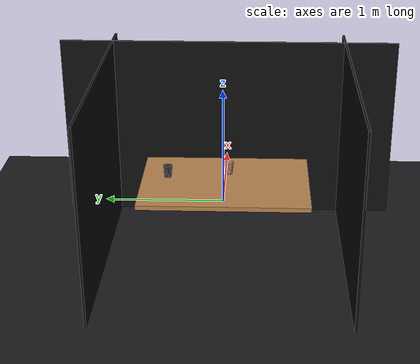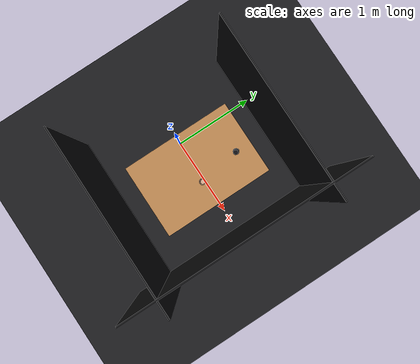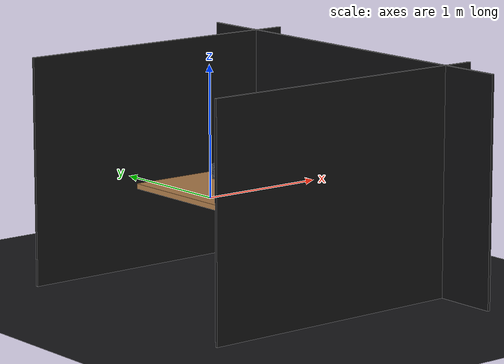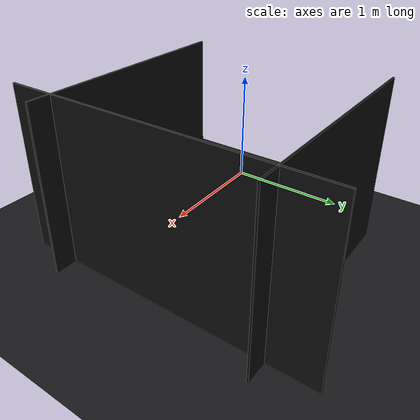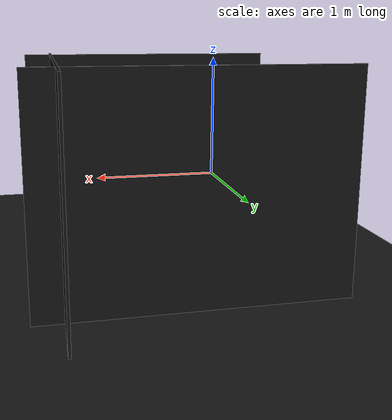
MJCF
<!-- GENERATED by scripts/build_yam_assets.py from teleop_sim/envs/yam_assets.py.
     Do not edit by hand: change the generator and re-run it. -->
<mujoco model="gem13_cell">
  <compiler angle="radian"/>
  <include file="cups.xml"/>
  <option timestep="0.0016666666666666668" integrator="implicitfast"
          cone="elliptic" impratio="10"/>
  <visual>
    <global offwidth="1280" offheight="960"/>
    <quality shadowsize="4096"/>
    <headlight ambient="0.42 0.40 0.38" diffuse="0.22 0.21 0.20" specular="0 0 0"/>
  </visual>
  <asset>
    <texture name="skybox" type="skybox" builtin="flat" rgb1="0.04 0.04 0.045"
             rgb2="0.04 0.04 0.045" width="64" height="384"/>
    <texture name="wood_tex" type="2d" file="wood.png"/>
    <material name="wood" texture="wood_tex" texuniform="true" texrepeat="2 2"
              reflectance="0" specular="0.08" shininess="0.15"/>
    <material name="curtain" rgba="0.055 0.055 0.06 1" specular="0" shininess="0"/>
    <material name="floor" rgba="0.10 0.10 0.11 1" specular="0"/>
  </asset>
  <worldbody>
    <light name="key" pos="0.45 0.1 1.6" dir="0 0 -1" diffuse="0.42 0.39 0.35"
           specular="0.03 0.03 0.03" castshadow="true"/>
    <light name="fill" pos="-0.2 -0.6 1.1" dir="0.3 0.5 -0.8" diffuse="0.22 0.20 0.18"
           specular="0 0 0" castshadow="false"/>
    <!-- Top at z = 0 (the arm base's plane); ends at the measured far edge. -->
    <geom name="tabletop" type="box" size="0.505 0.750 0.02" pos="0.385 0 -0.02"
          material="wood" friction="1.0 0.01 0.001"/>
    <geom name="floor" type="plane" size="3 3 0.05" pos="0 0 -0.76" material="floor" contype="0" conaffinity="0"/>
    <geom name="curtain_back" type="box" size="0.01 1.6 0.9" pos="1.340 0 0.1"
          material="curtain" contype="0" conaffinity="0"/>
    <geom name="curtain_left" type="box" size="1.2 0.01 0.9"
          pos="0.385 1.100 0.1" material="curtain" contype="0" conaffinity="0"/>
    <geom name="curtain_right" type="box" size="1.2 0.01 0.9"
          pos="0.385 -1.100 0.1" material="curtain" contype="0" conaffinity="0"/>
    <camera name="top" pos="0.22 0 0.72" xyaxes="0.000000 -1.000000 0.000000 0.965755 0.000000 0.259457" fovy="55"/>
  </worldbody>
</mujoco>

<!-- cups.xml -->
<!-- GENERATED by scripts/build_yam_assets.py from teleop_sim/envs/yam_assets.py.
     Do not edit by hand: change the generator and re-run it. -->
<mujoco model="gem13_cups">
  <worldbody>
    <body name="cup" pos="0.552 -0.03 0">
      <freejoint name="cup_free"/>
      <geom name="cup_base" type="cylinder" size="0.029 0.001" pos="0 0 0.001" density="900" rgba="0.93 0.8 0.76 0.55" friction="1 0.02 0.001" condim="4" solimp="0.95 0.99 0.001" solref="0.004 1"/>
      <geom name="cup_wall00" type="box" size="0.00075 0.005865 0.054390" pos="0.034750 0.000000 0.056" quat="0.998207 -0.000000 0.059861 0.000000" density="900" rgba="0.93 0.8 0.76 0.55" friction="1 0.02 0.001" condim="4" solimp="0.95 0.99 0.001" solref="0.004 1"/>
      <geom name="cup_wall01" type="box" size="0.00075 0.005865 0.054390" pos="0.033566 0.008994 0.056" quat="0.989667 -0.007813 0.059349 0.130292" density="900" rgba="0.93 0.8 0.76 0.55" friction="1 0.02 0.001" condim="4" solimp="0.95 0.99 0.001" solref="0.004 1"/>
      <geom name="cup_wall02" type="box" size="0.00075 0.005865 0.054390" pos="0.030094 0.017375 0.056" quat="0.964194 -0.015493 0.057821 0.258355" density="900" rgba="0.93 0.8 0.76 0.55" friction="1 0.02 0.001" condim="4" solimp="0.95 0.99 0.001" solref="0.004 1"/>
      <geom name="cup_wall03" type="box" size="0.00075 0.005865 0.054390" pos="0.024572 0.024572 0.056" quat="0.922223 -0.022908 0.055305 0.381997" density="900" rgba="0.93 0.8 0.76 0.55" friction="1 0.02 0.001" condim="4" solimp="0.95 0.99 0.001" solref="0.004 1"/>
      <geom name="cup_wall04" type="box" size="0.00075 0.005865 0.054390" pos="0.017375 0.030094 0.056" quat="0.864472 -0.029931 0.051841 0.499103" density="900" rgba="0.93 0.8 0.76 0.55" friction="1 0.02 0.001" condim="4" solimp="0.95 0.99 0.001" solref="0.004 1"/>
      <geom name="cup_wall05" type="box" size="0.00075 0.005865 0.054390" pos="0.008994 0.033566 0.056" quat="0.791931 -0.036441 0.047491 0.607670" density="900" rgba="0.93 0.8 0.76 0.55" friction="1 0.02 0.001" condim="4" solimp="0.95 0.99 0.001" solref="0.004 1"/>
      <geom name="cup_wall06" type="box" size="0.00075 0.005865 0.054390" pos="0.000000 0.034750 0.056" quat="0.705839 -0.042328 0.042328 0.705839" density="900" rgba="0.93 0.8 0.76 0.55" friction="1 0.02 0.001" condim="4" solimp="0.95 0.99 0.001" solref="0.004 1"/>
      <geom name="cup_wall07" type="box" size="0.00075 0.005865 0.054390" pos="-0.008994 0.033566 0.056" quat="0.607670 -0.047491 0.036441 0.791931" density="900" rgba="0.93 0.8 0.76 0.55" friction="1 0.02 0.001" condim="4" solimp="0.95 0.99 0.001" solref="0.004 1"/>
      <geom name="cup_wall08" type="box" size="0.00075 0.005865 0.054390" pos="-0.017375 0.030094 0.056" quat="0.499103 -0.051841 0.029931 0.864472" density="900" rgba="0.93 0.8 0.76 0.55" friction="1 0.02 0.001" condim="4" solimp="0.95 0.99 0.001" solref="0.004 1"/>
      <geom name="cup_wall09" type="box" size="0.00075 0.005865 0.054390" pos="-0.024572 0.024572 0.056" quat="0.381997 -0.055305 0.022908 0.922223" density="900" rgba="0.93 0.8 0.76 0.55" friction="1 0.02 0.001" condim="4" solimp="0.95 0.99 0.001" solref="0.004 1"/>
      <geom name="cup_wall10" type="box" size="0.00075 0.005865 0.054390" pos="-0.030094 0.017375 0.056" quat="0.258355 -0.057821 0.015493 0.964194" density="900" rgba="0.93 0.8 0.76 0.55" friction="1 0.02 0.001" condim="4" solimp="0.95 0.99 0.001" solref="0.004 1"/>
      <geom name="cup_wall11" type="box" size="0.00075 0.005865 0.054390" pos="-0.033566 0.008994 0.056" quat="0.130292 -0.059349 0.007813 0.989667" density="900" rgba="0.93 0.8 0.76 0.55" friction="1 0.02 0.001" condim="4" solimp="0.95 0.99 0.001" solref="0.004 1"/>
      <geom name="cup_wall12" type="box" size="0.00075 0.005865 0.054390" pos="-0.034750 0.000000 0.056" quat="0.000000 -0.059861 0.000000 0.998207" density="900" rgba="0.93 0.8 0.76 0.55" friction="1 0.02 0.001" condim="4" solimp="0.95 0.99 0.001" solref="0.004 1"/>
      <geom name="cup_wall13" type="box" size="0.00075 0.005865 0.054390" pos="-0.033566 -0.008994 0.056" quat="-0.130292 -0.059349 -0.007813 0.989667" density="900" rgba="0.93 0.8 0.76 0.55" friction="1 0.02 0.001" condim="4" solimp="0.95 0.99 0.001" solref="0.004 1"/>
      <geom name="cup_wall14" type="box" size="0.00075 0.005865 0.054390" pos="-0.030094 -0.017375 0.056" quat="-0.258355 -0.057821 -0.015493 0.964194" density="900" rgba="0.93 0.8 0.76 0.55" friction="1 0.02 0.001" condim="4" solimp="0.95 0.99 0.001" solref="0.004 1"/>
      <geom name="cup_wall15" type="box" size="0.00075 0.005865 0.054390" pos="-0.024572 -0.024572 0.056" quat="-0.381997 -0.055305 -0.022908 0.922223" density="900" rgba="0.93 0.8 0.76 0.55" friction="1 0.02 0.001" condim="4" solimp="0.95 0.99 0.001" solref="0.004 1"/>
      <geom name="cup_wall16" type="box" size="0.00075 0.005865 0.054390" pos="-0.017375 -0.030094 0.056" quat="-0.499103 -0.051841 -0.029931 0.864472" density="900" rgba="0.93 0.8 0.76 0.55" friction="1 0.02 0.001" condim="4" solimp="0.95 0.99 0.001" solref="0.004 1"/>
      <geom name="cup_wall17" type="box" size="0.00075 0.005865 0.054390" pos="-0.008994 -0.033566 0.056" quat="-0.607670 -0.047491 -0.036441 0.791931" density="900" rgba="0.93 0.8 0.76 0.55" friction="1 0.02 0.001" condim="4" solimp="0.95 0.99 0.001" solref="0.004 1"/>
      <geom name="cup_wall18" type="box" size="0.00075 0.005865 0.054390" pos="-0.000000 -0.034750 0.056" quat="-0.705839 -0.042328 -0.042328 0.705839" density="900" rgba="0.93 0.8 0.76 0.55" friction="1 0.02 0.001" condim="4" solimp="0.95 0.99 0.001" solref="0.004 1"/>
      <geom name="cup_wall19" type="box" size="0.00075 0.005865 0.054390" pos="0.008994 -0.033566 0.056" quat="-0.791931 -0.036441 -0.047491 0.607670" density="900" rgba="0.93 0.8 0.76 0.55" friction="1 0.02 0.001" condim="4" solimp="0.95 0.99 0.001" solref="0.004 1"/>
      <geom name="cup_wall20" type="box" size="0.00075 0.005865 0.054390" pos="0.017375 -0.030094 0.056" quat="-0.864472 -0.029931 -0.051841 0.499103" density="900" rgba="0.93 0.8 0.76 0.55" friction="1 0.02 0.001" condim="4" solimp="0.95 0.99 0.001" solref="0.004 1"/>
      <geom name="cup_wall21" type="box" size="0.00075 0.005865 0.054390" pos="0.024572 -0.024572 0.056" quat="-0.922223 -0.022908 -0.055305 0.381997" density="900" rgba="0.93 0.8 0.76 0.55" friction="1 0.02 0.001" condim="4" solimp="0.95 0.99 0.001" solref="0.004 1"/>
      <geom name="cup_wall22" type="box" size="0.00075 0.005865 0.054390" pos="0.030094 -0.017375 0.056" quat="-0.964194 -0.015493 -0.057821 0.258355" density="900" rgba="0.93 0.8 0.76 0.55" friction="1 0.02 0.001" condim="4" solimp="0.95 0.99 0.001" solref="0.004 1"/>
      <geom name="cup_wall23" type="box" size="0.00075 0.005865 0.054390" pos="0.033566 -0.008994 0.056" quat="-0.989667 -0.007813 -0.059349 0.130292" density="900" rgba="0.93 0.8 0.76 0.55" friction="1 0.02 0.001" condim="4" solimp="0.95 0.99 0.001" solref="0.004 1"/>
    </body>
    <body name="black_cup" pos="0.47 0.52 0">
      <freejoint name="black_cup_free"/>
      <geom name="black_cup_base" type="cylinder" size="0.032 0.001" pos="0 0 0.001" density="900" rgba="0.05 0.05 0.06 1" friction="1 0.02 0.001" condim="4" solimp="0.95 0.99 0.001" solref="0.004 1"/>
      <geom name="black_cup_wall00" type="box" size="0.00075 0.005581 0.054148" pos="0.035250 0.000000 0.056" quat="0.999317 -0.000000 0.036961 0.000000" density="900" rgba="0.05 0.05 0.06 1" friction="1 0.02 0.001" condim="4" solimp="0.95 0.99 0.001" solref="0.004 1"/>
      <geom name="black_cup_wall01" type="box" size="0.00075 0.005581 0.054148" pos="0.034049 0.009123 0.056" quat="0.990767 -0.004824 0.036645 0.130437" density="900" rgba="0.05 0.05 0.06 1" friction="1 0.02 0.001" condim="4" solimp="0.95 0.99 0.001" solref="0.004 1"/>
      <geom name="black_cup_wall02" type="box" size="0.00075 0.005581 0.054148" pos="0.030527 0.017625 0.056" quat="0.965266 -0.009566 0.035702 0.258642" density="900" rgba="0.05 0.05 0.06 1" friction="1 0.02 0.001" condim="4" solimp="0.95 0.99 0.001" solref="0.004 1"/>
      <geom name="black_cup_wall03" type="box" size="0.00075 0.005581 0.054148" pos="0.024926 0.024926 0.056" quat="0.923248 -0.014144 0.034148 0.382422" density="900" rgba="0.05 0.05 0.06 1" friction="1 0.02 0.001" condim="4" solimp="0.95 0.99 0.001" solref="0.004 1"/>
      <geom name="black_cup_wall04" type="box" size="0.00075 0.005581 0.054148" pos="0.017625 0.030527 0.056" quat="0.865434 -0.018481 0.032009 0.499658" density="900" rgba="0.05 0.05 0.06 1" friction="1 0.02 0.001" condim="4" solimp="0.95 0.99 0.001" solref="0.004 1"/>
      <geom name="black_cup_wall05" type="box" size="0.00075 0.005581 0.054148" pos="0.009123 0.034049 0.056" quat="0.792811 -0.022500 0.029323 0.608345" density="900" rgba="0.05 0.05 0.06 1" friction="1 0.02 0.001" condim="4" solimp="0.95 0.99 0.001" solref="0.004 1"/>
      <geom name="black_cup_wall06" type="box" size="0.00075 0.005581 0.054148" pos="0.000000 0.035250 0.056" quat="0.706624 -0.026135 0.026135 0.706624" density="900" rgba="0.05 0.05 0.06 1" friction="1 0.02 0.001" condim="4" solimp="0.95 0.99 0.001" solref="0.004 1"/>
      <geom name="black_cup_wall07" type="box" size="0.00075 0.005581 0.054148" pos="-0.009123 0.034049 0.056" quat="0.608345 -0.029323 0.022500 0.792811" density="900" rgba="0.05 0.05 0.06 1" friction="1 0.02 0.001" condim="4" solimp="0.95 0.99 0.001" solref="0.004 1"/>
      <geom name="black_cup_wall08" type="box" size="0.00075 0.005581 0.054148" pos="-0.017625 0.030527 0.056" quat="0.499658 -0.032009 0.018481 0.865434" density="900" rgba="0.05 0.05 0.06 1" friction="1 0.02 0.001" condim="4" solimp="0.95 0.99 0.001" solref="0.004 1"/>
      <geom name="black_cup_wall09" type="box" size="0.00075 0.005581 0.054148" pos="-0.024926 0.024926 0.056" quat="0.382422 -0.034148 0.014144 0.923248" density="900" rgba="0.05 0.05 0.06 1" friction="1 0.02 0.001" condim="4" solimp="0.95 0.99 0.001" solref="0.004 1"/>
      <geom name="black_cup_wall10" type="box" size="0.00075 0.005581 0.054148" pos="-0.030527 0.017625 0.056" quat="0.258642 -0.035702 0.009566 0.965266" density="900" rgba="0.05 0.05 0.06 1" friction="1 0.02 0.001" condim="4" solimp="0.95 0.99 0.001" solref="0.004 1"/>
      <geom name="black_cup_wall11" type="box" size="0.00075 0.005581 0.054148" pos="-0.034049 0.009123 0.056" quat="0.130437 -0.036645 0.004824 0.990767" density="900" rgba="0.05 0.05 0.06 1" friction="1 0.02 0.001" condim="4" solimp="0.95 0.99 0.001" solref="0.004 1"/>
      <geom name="black_cup_wall12" type="box" size="0.00075 0.005581 0.054148" pos="-0.035250 0.000000 0.056" quat="0.000000 -0.036961 0.000000 0.999317" density="900" rgba="0.05 0.05 0.06 1" friction="1 0.02 0.001" condim="4" solimp="0.95 0.99 0.001" solref="0.004 1"/>
      <geom name="black_cup_wall13" type="box" size="0.00075 0.005581 0.054148" pos="-0.034049 -0.009123 0.056" quat="-0.130437 -0.036645 -0.004824 0.990767" density="900" rgba="0.05 0.05 0.06 1" friction="1 0.02 0.001" condim="4" solimp="0.95 0.99 0.001" solref="0.004 1"/>
      <geom name="black_cup_wall14" type="box" size="0.00075 0.005581 0.054148" pos="-0.030527 -0.017625 0.056" quat="-0.258642 -0.035702 -0.009566 0.965266" density="900" rgba="0.05 0.05 0.06 1" friction="1 0.02 0.001" condim="4" solimp="0.95 0.99 0.001" solref="0.004 1"/>
      <geom name="black_cup_wall15" type="box" size="0.00075 0.005581 0.054148" pos="-0.024926 -0.024926 0.056" quat="-0.382422 -0.034148 -0.014144 0.923248" density="900" rgba="0.05 0.05 0.06 1" friction="1 0.02 0.001" condim="4" solimp="0.95 0.99 0.001" solref="0.004 1"/>
      <geom name="black_cup_wall16" type="box" size="0.00075 0.005581 0.054148" pos="-0.017625 -0.030527 0.056" quat="-0.499658 -0.032009 -0.018481 0.865434" density="900" rgba="0.05 0.05 0.06 1" friction="1 0.02 0.001" condim="4" solimp="0.95 0.99 0.001" solref="0.004 1"/>
      <geom name="black_cup_wall17" type="box" size="0.00075 0.005581 0.054148" pos="-0.009123 -0.034049 0.056" quat="-0.608345 -0.029323 -0.022500 0.792811" density="900" rgba="0.05 0.05 0.06 1" friction="1 0.02 0.001" condim="4" solimp="0.95 0.99 0.001" solref="0.004 1"/>
      <geom name="black_cup_wall18" type="box" size="0.00075 0.005581 0.054148" pos="-0.000000 -0.035250 0.056" quat="-0.706624 -0.026135 -0.026135 0.706624" density="900" rgba="0.05 0.05 0.06 1" friction="1 0.02 0.001" condim="4" solimp="0.95 0.99 0.001" solref="0.004 1"/>
      <geom name="black_cup_wall19" type="box" size="0.00075 0.005581 0.054148" pos="0.009123 -0.034049 0.056" quat="-0.792811 -0.022500 -0.029323 0.608345" density="900" rgba="0.05 0.05 0.06 1" friction="1 0.02 0.001" condim="4" solimp="0.95 0.99 0.001" solref="0.004 1"/>
      <geom name="black_cup_wall20" type="box" size="0.00075 0.005581 0.054148" pos="0.017625 -0.030527 0.056" quat="-0.865434 -0.018481 -0.032009 0.499658" density="900" rgba="0.05 0.05 0.06 1" friction="1 0.02 0.001" condim="4" solimp="0.95 0.99 0.001" solref="0.004 1"/>
      <geom name="black_cup_wall21" type="box" size="0.00075 0.005581 0.054148" pos="0.024926 -0.024926 0.056" quat="-0.923248 -0.014144 -0.034148 0.382422" density="900" rgba="0.05 0.05 0.06 1" friction="1 0.02 0.001" condim="4" solimp="0.95 0.99 0.001" solref="0.004 1"/>
      <geom name="black_cup_wall22" type="box" size="0.00075 0.005581 0.054148" pos="0.030527 -0.017625 0.056" quat="-0.965266 -0.009566 -0.035702 0.258642" density="900" rgba="0.05 0.05 0.06 1" friction="1 0.02 0.001" condim="4" solimp="0.95 0.99 0.001" solref="0.004 1"/>
      <geom name="black_cup_wall23" type="box" size="0.00075 0.005581 0.054148" pos="0.034049 -0.009123 0.056" quat="-0.990767 -0.004824 -0.036645 0.130437" density="900" rgba="0.05 0.05 0.06 1" friction="1 0.02 0.001" condim="4" solimp="0.95 0.99 0.001" solref="0.004 1"/>
    </body>
  </worldbody>
</mujoco>
